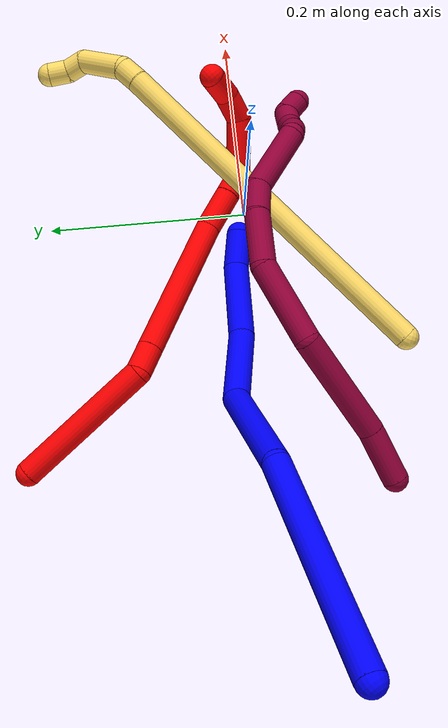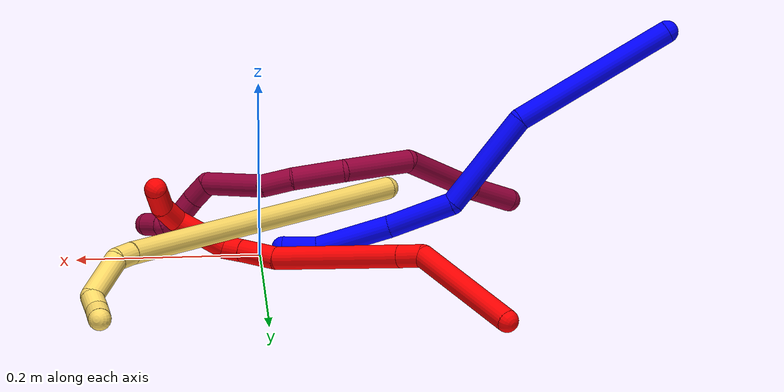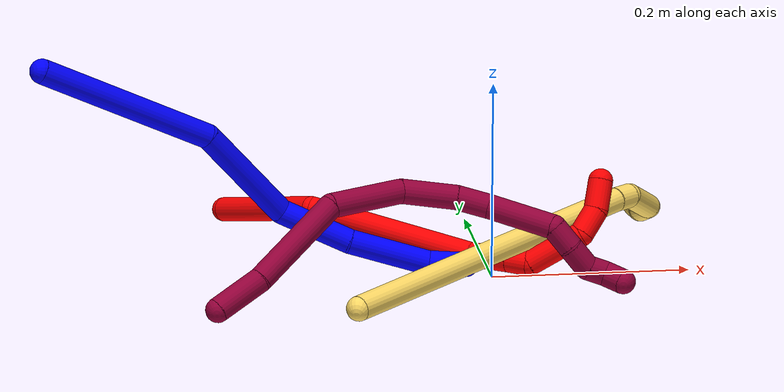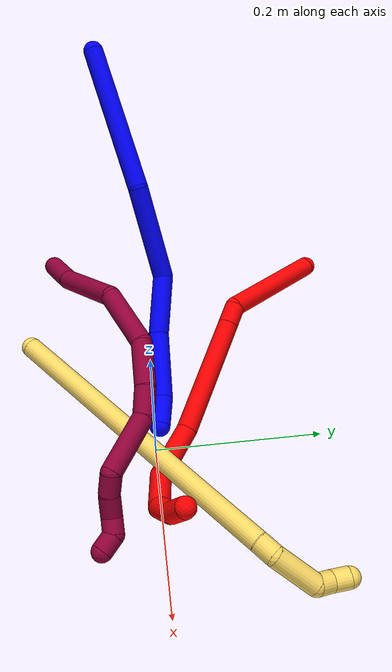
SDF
<sdf version="1.7">
 <world name="default">
  <model name="1">
   <static>0</static>
   <link name="1">
    <collision name="collision-cylinder-e_1_1_4">
     <pose>0.021118 -0.01757 -0.089955 2.9487 0.226455 1.73168</pose>
     <geometry><cylinder><radius>0.0125</radius><length>0.188113</length></cylinder></geometry>
     <surface>
      <friction><ode><mu>1.16</mu><mu2>1.16</mu2><slip1>0</slip1><slip2>0</slip2></ode></friction>
      <contact><ode><kp>1e+06</kp><kd>1</kd><max_vel>0</max_vel><min_depth>0.001</min_depth></ode></contact>
     </surface>
    </collision>
    <visual name="visual-cylinder-e_1_1_4">
     <pose>0.021118 -0.01757 -0.089955 2.9487 0.226455 1.73168</pose>
     <geometry><cylinder><radius>0.0125</radius><length>0.188113</length></cylinder></geometry>
     <material><ambient>0 0 1 1</ambient></material>
    </visual>
    <collision name="collision-cylinder-e_2_4_5">
     <pose>0.052404 -0.066819 -0.227627 2.55552 0.175704 0.56806</pose>
     <geometry><cylinder><radius>0.0125</radius><length>0.116341</length></cylinder></geometry>
     <surface>
      <friction><ode><mu>1.16</mu><mu2>1.16</mu2><slip1>0</slip1><slip2>0</slip2></ode></friction>
      <contact><ode><kp>1e+06</kp><kd>1</kd><max_vel>0</max_vel><min_depth>0.001</min_depth></ode></contact>
     </surface>
    </collision>
    <visual name="visual-cylinder-e_2_4_5">
     <pose>0.052404 -0.066819 -0.227627 2.55552 0.175704 0.56806</pose>
     <geometry><cylinder><radius>0.0125</radius><length>0.116341</length></cylinder></geometry>
     <material><ambient>0 0 1 1</ambient></material>
    </visual>
    <collision name="collision-cylinder-e_3_5_6">
     <pose>0.084147 -0.104144 -0.30551 2.95655 0.612726 2.57093</pose>
     <geometry><cylinder><radius>0.0125</radius><length>0.075028</length></cylinder></geometry>
     <surface>
      <friction><ode><mu>1.16</mu><mu2>1.16</mu2><slip1>0</slip1><slip2>0</slip2></ode></friction>
      <contact><ode><kp>1e+06</kp><kd>1</kd><max_vel>0</max_vel><min_depth>0.001</min_depth></ode></contact>
     </surface>
    </collision>
    <visual name="visual-cylinder-e_3_5_6">
     <pose>0.084147 -0.104144 -0.30551 2.95655 0.612726 2.57093</pose>
     <geometry><cylinder><radius>0.0125</radius><length>0.075028</length></cylinder></geometry>
     <material><ambient>0 0 1 1</ambient></material>
    </visual>
    <collision name="collision-cylinder-e_4_6_7">
     <pose>0.12523 -0.111084 -0.372111 3.1061 0.49133 3.00025</pose>
     <geometry><cylinder><radius>0.0125</radius><length>0.082699</length></cylinder></geometry>
     <surface>
      <friction><ode><mu>1.16</mu><mu2>1.16</mu2><slip1>0</slip1><slip2>0</slip2></ode></friction>
      <contact><ode><kp>1e+06</kp><kd>1</kd><max_vel>0</max_vel><min_depth>0.001</min_depth></ode></contact>
     </surface>
    </collision>
    <visual name="visual-cylinder-e_4_6_7">
     <pose>0.12523 -0.111084 -0.372111 3.1061 0.49133 3.00025</pose>
     <geometry><cylinder><radius>0.0125</radius><length>0.082699</length></cylinder></geometry>
     <material><ambient>0 0 1 1</ambient></material>
    </visual>
    <collision name="collision-cylinder-e_5_7_2">
     <pose>0.155771 -0.108053 -0.423282 -2.8561 0.622979 -2.30191</pose>
     <geometry><cylinder><radius>0.0125</radius><length>0.037819</length></cylinder></geometry>
     <surface>
      <friction><ode><mu>1.16</mu><mu2>1.16</mu2><slip1>0</slip1><slip2>0</slip2></ode></friction>
      <contact><ode><kp>1e+06</kp><kd>1</kd><max_vel>0</max_vel><min_depth>0.001</min_depth></ode></contact>
     </surface>
    </collision>
    <visual name="visual-cylinder-e_5_7_2">
     <pose>0.155771 -0.108053 -0.423282 -2.8561 0.622979 -2.30191</pose>
     <geometry><cylinder><radius>0.0125</radius><length>0.037819</length></cylinder></geometry>
     <material><ambient>0 0 1 1</ambient></material>
    </visual>
    <collision name="collision-sphere-2">
     <pose>0.166804 -0.103728 -0.438017 0 -0 0</pose>
     <geometry><sphere><radius>0.0125</radius></sphere></geometry>
     <surface>
      <friction><ode><mu>1.16</mu><mu2>1.16</mu2><slip1>0</slip1><slip2>0</slip2></ode></friction>
      <contact><ode><kp>1e+06</kp><kd>1</kd><max_vel>0</max_vel><min_depth>0.001</min_depth></ode></contact>
     </surface>
    </collision>
    <visual name="visual-sphere-2">
     <pose>0.166804 -0.103728 -0.438017 0 -0 0</pose>
     <geometry><sphere><radius>0.0125</radius></sphere></geometry>
     <material><ambient>0 0 1 1</ambient></material>
    </visual>
    <collision name="collision-sphere-7">
     <pose>0.144739 -0.112378 -0.408546 0 -0 0</pose>
     <geometry><sphere><radius>0.0125</radius></sphere></geometry>
     <surface>
      <friction><ode><mu>1.16</mu><mu2>1.16</mu2><slip1>0</slip1><slip2>0</slip2></ode></friction>
      <contact><ode><kp>1e+06</kp><kd>1</kd><max_vel>0</max_vel><min_depth>0.001</min_depth></ode></contact>
     </surface>
    </collision>
    <visual name="visual-sphere-7">
     <pose>0.144739 -0.112378 -0.408546 0 -0 0</pose>
     <geometry><sphere><radius>0.0125</radius></sphere></geometry>
     <material><ambient>0 0 1 1</ambient></material>
    </visual>
    <collision name="collision-sphere-6">
     <pose>0.105721 -0.10979 -0.335676 0 -0 0</pose>
     <geometry><sphere><radius>0.0125</radius></sphere></geometry>
     <surface>
      <friction><ode><mu>1.16</mu><mu2>1.16</mu2><slip1>0</slip1><slip2>0</slip2></ode></friction>
      <contact><ode><kp>1e+06</kp><kd>1</kd><max_vel>0</max_vel><min_depth>0.001</min_depth></ode></contact>
     </surface>
    </collision>
    <visual name="visual-sphere-6">
     <pose>0.105721 -0.10979 -0.335676 0 -0 0</pose>
     <geometry><sphere><radius>0.0125</radius></sphere></geometry>
     <material><ambient>0 0 1 1</ambient></material>
    </visual>
    <collision name="collision-sphere-5">
     <pose>0.062573 -0.098497 -0.275344 0 -0 0</pose>
     <geometry><sphere><radius>0.0125</radius></sphere></geometry>
     <surface>
      <friction><ode><mu>1.16</mu><mu2>1.16</mu2><slip1>0</slip1><slip2>0</slip2></ode></friction>
      <contact><ode><kp>1e+06</kp><kd>1</kd><max_vel>0</max_vel><min_depth>0.001</min_depth></ode></contact>
     </surface>
    </collision>
    <visual name="visual-sphere-5">
     <pose>0.062573 -0.098497 -0.275344 0 -0 0</pose>
     <geometry><sphere><radius>0.0125</radius></sphere></geometry>
     <material><ambient>0 0 1 1</ambient></material>
    </visual>
    <collision name="collision-sphere-1">
     <geometry><sphere><radius>0.0125</radius></sphere></geometry>
     <surface>
      <friction><ode><mu>1.16</mu><mu2>1.16</mu2><slip1>0</slip1><slip2>0</slip2></ode></friction>
      <contact><ode><kp>1e+06</kp><kd>1</kd><max_vel>0</max_vel><min_depth>0.001</min_depth></ode></contact>
     </surface>
    </collision>
    <visual name="visual-sphere-1">
     <geometry><sphere><radius>0.0125</radius></sphere></geometry>
     <material><ambient>0 0 1 1</ambient></material>
    </visual>
    <collision name="collision-sphere-4">
     <pose>0.042236 -0.03514 -0.17991 0 -0 0</pose>
     <geometry><sphere><radius>0.0125</radius></sphere></geometry>
     <surface>
      <friction><ode><mu>1.16</mu><mu2>1.16</mu2><slip1>0</slip1><slip2>0</slip2></ode></friction>
      <contact><ode><kp>1e+06</kp><kd>1</kd><max_vel>0</max_vel><min_depth>0.001</min_depth></ode></contact>
     </surface>
    </collision>
    <visual name="visual-sphere-4">
     <pose>0.042236 -0.03514 -0.17991 0 -0 0</pose>
     <geometry><sphere><radius>0.0125</radius></sphere></geometry>
     <material><ambient>0 0 1 1</ambient></material>
    </visual>
    <inertial>
     <pose>0.06526 -0.064331 -0.226214 0 -0 0</pose>
     <mass>0.5</mass>
     <inertia>
      <ixx>0.000597</ixx>
      <ixy>0</ixy>
      <ixz>0</ixz>
      <iyy>0.000736</iyy>
      <iyz>0</iyz>
      <izz>-4.8e-05</izz>
     </inertia>
    </inertial>
   </link>
   <pose>-0.447225 -0.032666 0.236665 1.31919 0.100345 -1.12625</pose>
  </model>
  <model name="2">
   <static>0</static>
   <link name="2">
    <collision name="collision-cylinder-e_1_1_4">
     <pose>-0.002177 -0.004907 -0.069579 3.07118 -0.031194 -0.833824</pose>
     <geometry><cylinder><radius>0.0125</radius><length>0.139572</length></cylinder></geometry>
     <surface>
      <friction><ode><mu>1.16</mu><mu2>1.16</mu2><slip1>0</slip1><slip2>0</slip2></ode></friction>
      <contact><ode><kp>1e+06</kp><kd>1</kd><max_vel>0</max_vel><min_depth>0.001</min_depth></ode></contact>
     </surface>
    </collision>
    <visual name="visual-cylinder-e_1_1_4">
     <pose>-0.002177 -0.004907 -0.069579 3.07118 -0.031194 -0.833824</pose>
     <geometry><cylinder><radius>0.0125</radius><length>0.139572</length></cylinder></geometry>
     <material><ambient>1 0 0 1</ambient></material>
    </visual>
    <collision name="collision-cylinder-e_2_4_5">
     <pose>0.003172 -0.010967 -0.150519 3.04055 0.582721 2.80753</pose>
     <geometry><cylinder><radius>0.0125</radius><length>0.02735</length></cylinder></geometry>
     <surface>
      <friction><ode><mu>1.16</mu><mu2>1.16</mu2><slip1>0</slip1><slip2>0</slip2></ode></friction>
      <contact><ode><kp>1e+06</kp><kd>1</kd><max_vel>0</max_vel><min_depth>0.001</min_depth></ode></contact>
     </surface>
    </collision>
    <visual name="visual-cylinder-e_2_4_5">
     <pose>0.003172 -0.010967 -0.150519 3.04055 0.582721 2.80753</pose>
     <geometry><cylinder><radius>0.0125</radius><length>0.02735</length></cylinder></geometry>
     <material><ambient>1 0 0 1</ambient></material>
    </visual>
    <collision name="collision-cylinder-e_3_5_6">
     <pose>0.051324 -0.018007 -0.223231 3.0459 0.582776 2.82495</pose>
     <geometry><cylinder><radius>0.0125</radius><length>0.147638</length></cylinder></geometry>
     <surface>
      <friction><ode><mu>1.16</mu><mu2>1.16</mu2><slip1>0</slip1><slip2>0</slip2></ode></friction>
      <contact><ode><kp>1e+06</kp><kd>1</kd><max_vel>0</max_vel><min_depth>0.001</min_depth></ode></contact>
     </surface>
    </collision>
    <visual name="visual-cylinder-e_3_5_6">
     <pose>0.051324 -0.018007 -0.223231 3.0459 0.582776 2.82495</pose>
     <geometry><cylinder><radius>0.0125</radius><length>0.147638</length></cylinder></geometry>
     <material><ambient>1 0 0 1</ambient></material>
    </visual>
    <collision name="collision-cylinder-e_4_6_7">
     <pose>0.099866 -0.02696 -0.304205 2.9867 0.379343 2.3733</pose>
     <geometry><cylinder><radius>0.0125</radius><length>0.042759</length></cylinder></geometry>
     <surface>
      <friction><ode><mu>1.16</mu><mu2>1.16</mu2><slip1>0</slip1><slip2>0</slip2></ode></friction>
      <contact><ode><kp>1e+06</kp><kd>1</kd><max_vel>0</max_vel><min_depth>0.001</min_depth></ode></contact>
     </surface>
    </collision>
    <visual name="visual-cylinder-e_4_6_7">
     <pose>0.099866 -0.02696 -0.304205 2.9867 0.379343 2.3733</pose>
     <geometry><cylinder><radius>0.0125</radius><length>0.042759</length></cylinder></geometry>
     <material><ambient>1 0 0 1</ambient></material>
    </visual>
    <collision name="collision-cylinder-e_5_7_8">
     <pose>0.112253 -0.03141 -0.334193 3.00867 0.403863 2.51289</pose>
     <geometry><cylinder><radius>0.0125</radius><length>0.022746</length></cylinder></geometry>
     <surface>
      <friction><ode><mu>1.16</mu><mu2>1.16</mu2><slip1>0</slip1><slip2>0</slip2></ode></friction>
      <contact><ode><kp>1e+06</kp><kd>1</kd><max_vel>0</max_vel><min_depth>0.001</min_depth></ode></contact>
     </surface>
    </collision>
    <visual name="visual-cylinder-e_5_7_8">
     <pose>0.112253 -0.03141 -0.334193 3.00867 0.403863 2.51289</pose>
     <geometry><cylinder><radius>0.0125</radius><length>0.022746</length></cylinder></geometry>
     <material><ambient>1 0 0 1</ambient></material>
    </visual>
    <collision name="collision-cylinder-e_6_8_9">
     <pose>0.123218 -0.055201 -0.363573 2.27452 0.217561 0.463379</pose>
     <geometry><cylinder><radius>0.0125</radius><length>0.06019</length></cylinder></geometry>
     <surface>
      <friction><ode><mu>1.16</mu><mu2>1.16</mu2><slip1>0</slip1><slip2>0</slip2></ode></friction>
      <contact><ode><kp>1e+06</kp><kd>1</kd><max_vel>0</max_vel><min_depth>0.001</min_depth></ode></contact>
     </surface>
    </collision>
    <visual name="visual-cylinder-e_6_8_9">
     <pose>0.123218 -0.055201 -0.363573 2.27452 0.217561 0.463379</pose>
     <geometry><cylinder><radius>0.0125</radius><length>0.06019</length></cylinder></geometry>
     <material><ambient>1 0 0 1</ambient></material>
    </visual>
    <collision name="collision-cylinder-e_7_9_10">
     <pose>0.130349 -0.091951 -0.384016 1.67002 0.044037 0.048636</pose>
     <geometry><cylinder><radius>0.0125</radius><length>0.02886</length></cylinder></geometry>
     <surface>
      <friction><ode><mu>1.16</mu><mu2>1.16</mu2><slip1>0</slip1><slip2>0</slip2></ode></friction>
      <contact><ode><kp>1e+06</kp><kd>1</kd><max_vel>0</max_vel><min_depth>0.001</min_depth></ode></contact>
     </surface>
    </collision>
    <visual name="visual-cylinder-e_7_9_10">
     <pose>0.130349 -0.091951 -0.384016 1.67002 0.044037 0.048636</pose>
     <geometry><cylinder><radius>0.0125</radius><length>0.02886</length></cylinder></geometry>
     <material><ambient>1 0 0 1</ambient></material>
    </visual>
    <collision name="collision-cylinder-e_8_10_2">
     <pose>0.127123 -0.121131 -0.38358 1.44581 -0.252788 -0.223277</pose>
     <geometry><cylinder><radius>0.0125</radius><length>0.030884</length></cylinder></geometry>
     <surface>
      <friction><ode><mu>1.16</mu><mu2>1.16</mu2><slip1>0</slip1><slip2>0</slip2></ode></friction>
      <contact><ode><kp>1e+06</kp><kd>1</kd><max_vel>0</max_vel><min_depth>0.001</min_depth></ode></contact>
     </surface>
    </collision>
    <visual name="visual-cylinder-e_8_10_2">
     <pose>0.127123 -0.121131 -0.38358 1.44581 -0.252788 -0.223277</pose>
     <geometry><cylinder><radius>0.0125</radius><length>0.030884</length></cylinder></geometry>
     <material><ambient>1 0 0 1</ambient></material>
    </visual>
    <collision name="collision-sphere-2">
     <pose>0.123261 -0.135965 -0.381716 0 -0 0</pose>
     <geometry><sphere><radius>0.0125</radius></sphere></geometry>
     <surface>
      <friction><ode><mu>1.16</mu><mu2>1.16</mu2><slip1>0</slip1><slip2>0</slip2></ode></friction>
      <contact><ode><kp>1e+06</kp><kd>1</kd><max_vel>0</max_vel><min_depth>0.001</min_depth></ode></contact>
     </surface>
    </collision>
    <visual name="visual-sphere-2">
     <pose>0.123261 -0.135965 -0.381716 0 -0 0</pose>
     <geometry><sphere><radius>0.0125</radius></sphere></geometry>
     <material><ambient>1 0 0 1</ambient></material>
    </visual>
    <collision name="collision-sphere-10">
     <pose>0.130985 -0.106297 -0.385444 0 -0 0</pose>
     <geometry><sphere><radius>0.0125</radius></sphere></geometry>
     <surface>
      <friction><ode><mu>1.16</mu><mu2>1.16</mu2><slip1>0</slip1><slip2>0</slip2></ode></friction>
      <contact><ode><kp>1e+06</kp><kd>1</kd><max_vel>0</max_vel><min_depth>0.001</min_depth></ode></contact>
     </surface>
    </collision>
    <visual name="visual-sphere-10">
     <pose>0.130985 -0.106297 -0.385444 0 -0 0</pose>
     <geometry><sphere><radius>0.0125</radius></sphere></geometry>
     <material><ambient>1 0 0 1</ambient></material>
    </visual>
    <collision name="collision-sphere-9">
     <pose>0.129714 -0.077606 -0.382588 0 -0 0</pose>
     <geometry><sphere><radius>0.0125</radius></sphere></geometry>
     <surface>
      <friction><ode><mu>1.16</mu><mu2>1.16</mu2><slip1>0</slip1><slip2>0</slip2></ode></friction>
      <contact><ode><kp>1e+06</kp><kd>1</kd><max_vel>0</max_vel><min_depth>0.001</min_depth></ode></contact>
     </surface>
    </collision>
    <visual name="visual-sphere-9">
     <pose>0.129714 -0.077606 -0.382588 0 -0 0</pose>
     <geometry><sphere><radius>0.0125</radius></sphere></geometry>
     <material><ambient>1 0 0 1</ambient></material>
    </visual>
    <collision name="collision-sphere-4">
     <pose>-0.004353 -0.009815 -0.139159 0 -0 0</pose>
     <geometry><sphere><radius>0.0125</radius></sphere></geometry>
     <surface>
      <friction><ode><mu>1.16</mu><mu2>1.16</mu2><slip1>0</slip1><slip2>0</slip2></ode></friction>
      <contact><ode><kp>1e+06</kp><kd>1</kd><max_vel>0</max_vel><min_depth>0.001</min_depth></ode></contact>
     </surface>
    </collision>
    <visual name="visual-sphere-4">
     <pose>-0.004353 -0.009815 -0.139159 0 -0 0</pose>
     <geometry><sphere><radius>0.0125</radius></sphere></geometry>
     <material><ambient>1 0 0 1</ambient></material>
    </visual>
    <collision name="collision-sphere-1">
     <geometry><sphere><radius>0.0125</radius></sphere></geometry>
     <surface>
      <friction><ode><mu>1.16</mu><mu2>1.16</mu2><slip1>0</slip1><slip2>0</slip2></ode></friction>
      <contact><ode><kp>1e+06</kp><kd>1</kd><max_vel>0</max_vel><min_depth>0.001</min_depth></ode></contact>
     </surface>
    </collision>
    <visual name="visual-sphere-1">
     <geometry><sphere><radius>0.0125</radius></sphere></geometry>
     <material><ambient>1 0 0 1</ambient></material>
    </visual>
    <collision name="collision-sphere-8">
     <pose>0.116722 -0.032796 -0.344559 0 -0 0</pose>
     <geometry><sphere><radius>0.0125</radius></sphere></geometry>
     <surface>
      <friction><ode><mu>1.16</mu><mu2>1.16</mu2><slip1>0</slip1><slip2>0</slip2></ode></friction>
      <contact><ode><kp>1e+06</kp><kd>1</kd><max_vel>0</max_vel><min_depth>0.001</min_depth></ode></contact>
     </surface>
    </collision>
    <visual name="visual-sphere-8">
     <pose>0.116722 -0.032796 -0.344559 0 -0 0</pose>
     <geometry><sphere><radius>0.0125</radius></sphere></geometry>
     <material><ambient>1 0 0 1</ambient></material>
    </visual>
    <collision name="collision-sphere-5">
     <pose>0.010698 -0.012118 -0.161879 0 -0 0</pose>
     <geometry><sphere><radius>0.0125</radius></sphere></geometry>
     <surface>
      <friction><ode><mu>1.16</mu><mu2>1.16</mu2><slip1>0</slip1><slip2>0</slip2></ode></friction>
      <contact><ode><kp>1e+06</kp><kd>1</kd><max_vel>0</max_vel><min_depth>0.001</min_depth></ode></contact>
     </surface>
    </collision>
    <visual name="visual-sphere-5">
     <pose>0.010698 -0.012118 -0.161879 0 -0 0</pose>
     <geometry><sphere><radius>0.0125</radius></sphere></geometry>
     <material><ambient>1 0 0 1</ambient></material>
    </visual>
    <collision name="collision-sphere-6">
     <pose>0.091949 -0.023897 -0.284584 0 -0 0</pose>
     <geometry><sphere><radius>0.0125</radius></sphere></geometry>
     <surface>
      <friction><ode><mu>1.16</mu><mu2>1.16</mu2><slip1>0</slip1><slip2>0</slip2></ode></friction>
      <contact><ode><kp>1e+06</kp><kd>1</kd><max_vel>0</max_vel><min_depth>0.001</min_depth></ode></contact>
     </surface>
    </collision>
    <visual name="visual-sphere-6">
     <pose>0.091949 -0.023897 -0.284584 0 -0 0</pose>
     <geometry><sphere><radius>0.0125</radius></sphere></geometry>
     <material><ambient>1 0 0 1</ambient></material>
    </visual>
    <collision name="collision-sphere-7">
     <pose>0.107783 -0.030024 -0.323827 0 -0 0</pose>
     <geometry><sphere><radius>0.0125</radius></sphere></geometry>
     <surface>
      <friction><ode><mu>1.16</mu><mu2>1.16</mu2><slip1>0</slip1><slip2>0</slip2></ode></friction>
      <contact><ode><kp>1e+06</kp><kd>1</kd><max_vel>0</max_vel><min_depth>0.001</min_depth></ode></contact>
     </surface>
    </collision>
    <visual name="visual-sphere-7">
     <pose>0.107783 -0.030024 -0.323827 0 -0 0</pose>
     <geometry><sphere><radius>0.0125</radius></sphere></geometry>
     <material><ambient>1 0 0 1</ambient></material>
    </visual>
    <inertial>
     <pose>0.058576 -0.030456 -0.224415 0 -0 0</pose>
     <mass>0.5</mass>
     <inertia>
      <ixx>-0.000122</ixx>
      <ixy>0</ixy>
      <ixz>0</ixz>
      <iyy>1.3e-05</iyy>
      <iyz>0</iyz>
      <izz>-0.000121</izz>
     </inertia>
    </inertial>
   </link>
   <pose>-0.248897 0.228508 0.011499 -1.77108 0.710709 0.469087</pose>
  </model>
  <model name="5">
   <static>0</static>
   <link name="5">
    <collision name="collision-cylinder-e_1_1_4">
     <pose>0.073164 0.084678 0.153525 -0.504041 0.395327 -0.10305</pose>
     <geometry><cylinder><radius>0.0125</radius><length>0.379965</length></cylinder></geometry>
     <surface>
      <friction><ode><mu>1.16</mu><mu2>1.16</mu2><slip1>0</slip1><slip2>0</slip2></ode></friction>
      <contact><ode><kp>1e+06</kp><kd>1</kd><max_vel>0</max_vel><min_depth>0.001</min_depth></ode></contact>
     </surface>
    </collision>
    <visual name="visual-cylinder-e_1_1_4">
     <pose>0.073164 0.084678 0.153525 -0.504041 0.395327 -0.10305</pose>
     <geometry><cylinder><radius>0.0125</radius><length>0.379965</length></cylinder></geometry>
     <material><ambient>1 0.858824 0.4 1</ambient></material>
    </visual>
    <collision name="collision-cylinder-e_2_4_5">
     <pose>0.150005 0.175181 0.315881 -0.583015 0.334533 -0.101239</pose>
     <geometry><cylinder><radius>0.0125</radius><length>0.0224</length></cylinder></geometry>
     <surface>
      <friction><ode><mu>1.16</mu><mu2>1.16</mu2><slip1>0</slip1><slip2>0</slip2></ode></friction>
      <contact><ode><kp>1e+06</kp><kd>1</kd><max_vel>0</max_vel><min_depth>0.001</min_depth></ode></contact>
     </surface>
    </collision>
    <visual name="visual-cylinder-e_2_4_5">
     <pose>0.150005 0.175181 0.315881 -0.583015 0.334533 -0.101239</pose>
     <geometry><cylinder><radius>0.0125</radius><length>0.0224</length></cylinder></geometry>
     <material><ambient>1 0.858824 0.4 1</ambient></material>
    </visual>
    <collision name="collision-cylinder-e_3_5_6">
     <pose>0.150873 0.202131 0.342721 -0.864899 -0.10087 0.046592</pose>
     <geometry><cylinder><radius>0.0125</radius><length>0.055803</length></cylinder></geometry>
     <surface>
      <friction><ode><mu>1.16</mu><mu2>1.16</mu2><slip1>0</slip1><slip2>0</slip2></ode></friction>
      <contact><ode><kp>1e+06</kp><kd>1</kd><max_vel>0</max_vel><min_depth>0.001</min_depth></ode></contact>
     </surface>
    </collision>
    <visual name="visual-cylinder-e_3_5_6">
     <pose>0.150873 0.202131 0.342721 -0.864899 -0.10087 0.046592</pose>
     <geometry><cylinder><radius>0.0125</radius><length>0.055803</length></cylinder></geometry>
     <material><ambient>1 0.858824 0.4 1</ambient></material>
    </visual>
    <collision name="collision-cylinder-e_4_6_7">
     <pose>0.140416 0.227105 0.366608 -0.579575 -0.827679 0.260442</pose>
     <geometry><cylinder><radius>0.0125</radius><length>0.020771</length></cylinder></geometry>
     <surface>
      <friction><ode><mu>1.16</mu><mu2>1.16</mu2><slip1>0</slip1><slip2>0</slip2></ode></friction>
      <contact><ode><kp>1e+06</kp><kd>1</kd><max_vel>0</max_vel><min_depth>0.001</min_depth></ode></contact>
     </surface>
    </collision>
    <visual name="visual-cylinder-e_4_6_7">
     <pose>0.140416 0.227105 0.366608 -0.579575 -0.827679 0.260442</pose>
     <geometry><cylinder><radius>0.0125</radius><length>0.020771</length></cylinder></geometry>
     <material><ambient>1 0.858824 0.4 1</ambient></material>
    </visual>
    <collision name="collision-cylinder-e_5_7_2">
     <pose>0.127298 0.232538 0.381345 -0.17697 -0.546233 0.049692</pose>
     <geometry><cylinder><radius>0.0125</radius><length>0.021061</length></cylinder></geometry>
     <surface>
      <friction><ode><mu>1.16</mu><mu2>1.16</mu2><slip1>0</slip1><slip2>0</slip2></ode></friction>
      <contact><ode><kp>1e+06</kp><kd>1</kd><max_vel>0</max_vel><min_depth>0.001</min_depth></ode></contact>
     </surface>
    </collision>
    <visual name="visual-cylinder-e_5_7_2">
     <pose>0.127298 0.232538 0.381345 -0.17697 -0.546233 0.049692</pose>
     <geometry><cylinder><radius>0.0125</radius><length>0.021061</length></cylinder></geometry>
     <material><ambient>1 0.858824 0.4 1</ambient></material>
    </visual>
    <collision name="collision-sphere-2">
     <pose>0.121827 0.234122 0.390203 0 -0 0</pose>
     <geometry><sphere><radius>0.0125</radius></sphere></geometry>
     <surface>
      <friction><ode><mu>1.16</mu><mu2>1.16</mu2><slip1>0</slip1><slip2>0</slip2></ode></friction>
      <contact><ode><kp>1e+06</kp><kd>1</kd><max_vel>0</max_vel><min_depth>0.001</min_depth></ode></contact>
     </surface>
    </collision>
    <visual name="visual-sphere-2">
     <pose>0.121827 0.234122 0.390203 0 -0 0</pose>
     <geometry><sphere><radius>0.0125</radius></sphere></geometry>
     <material><ambient>1 0.858824 0.4 1</ambient></material>
    </visual>
    <collision name="collision-sphere-7">
     <pose>0.132768 0.230954 0.372487 0 -0 0</pose>
     <geometry><sphere><radius>0.0125</radius></sphere></geometry>
     <surface>
      <friction><ode><mu>1.16</mu><mu2>1.16</mu2><slip1>0</slip1><slip2>0</slip2></ode></friction>
      <contact><ode><kp>1e+06</kp><kd>1</kd><max_vel>0</max_vel><min_depth>0.001</min_depth></ode></contact>
     </surface>
    </collision>
    <visual name="visual-sphere-7">
     <pose>0.132768 0.230954 0.372487 0 -0 0</pose>
     <geometry><sphere><radius>0.0125</radius></sphere></geometry>
     <material><ambient>1 0.858824 0.4 1</ambient></material>
    </visual>
    <collision name="collision-sphere-6">
     <pose>0.148063 0.223257 0.360729 0 -0 0</pose>
     <geometry><sphere><radius>0.0125</radius></sphere></geometry>
     <surface>
      <friction><ode><mu>1.16</mu><mu2>1.16</mu2><slip1>0</slip1><slip2>0</slip2></ode></friction>
      <contact><ode><kp>1e+06</kp><kd>1</kd><max_vel>0</max_vel><min_depth>0.001</min_depth></ode></contact>
     </surface>
    </collision>
    <visual name="visual-sphere-6">
     <pose>0.148063 0.223257 0.360729 0 -0 0</pose>
     <geometry><sphere><radius>0.0125</radius></sphere></geometry>
     <material><ambient>1 0.858824 0.4 1</ambient></material>
    </visual>
    <collision name="collision-sphere-5">
     <pose>0.153683 0.181005 0.324712 0 -0 0</pose>
     <geometry><sphere><radius>0.0125</radius></sphere></geometry>
     <surface>
      <friction><ode><mu>1.16</mu><mu2>1.16</mu2><slip1>0</slip1><slip2>0</slip2></ode></friction>
      <contact><ode><kp>1e+06</kp><kd>1</kd><max_vel>0</max_vel><min_depth>0.001</min_depth></ode></contact>
     </surface>
    </collision>
    <visual name="visual-sphere-5">
     <pose>0.153683 0.181005 0.324712 0 -0 0</pose>
     <geometry><sphere><radius>0.0125</radius></sphere></geometry>
     <material><ambient>1 0.858824 0.4 1</ambient></material>
    </visual>
    <collision name="collision-sphere-1">
     <geometry><sphere><radius>0.0125</radius></sphere></geometry>
     <surface>
      <friction><ode><mu>1.16</mu><mu2>1.16</mu2><slip1>0</slip1><slip2>0</slip2></ode></friction>
      <contact><ode><kp>1e+06</kp><kd>1</kd><max_vel>0</max_vel><min_depth>0.001</min_depth></ode></contact>
     </surface>
    </collision>
    <visual name="visual-sphere-1">
     <geometry><sphere><radius>0.0125</radius></sphere></geometry>
     <material><ambient>1 0.858824 0.4 1</ambient></material>
    </visual>
    <collision name="collision-sphere-4">
     <pose>0.146328 0.169357 0.30705 0 -0 0</pose>
     <geometry><sphere><radius>0.0125</radius></sphere></geometry>
     <surface>
      <friction><ode><mu>1.16</mu><mu2>1.16</mu2><slip1>0</slip1><slip2>0</slip2></ode></friction>
      <contact><ode><kp>1e+06</kp><kd>1</kd><max_vel>0</max_vel><min_depth>0.001</min_depth></ode></contact>
     </surface>
    </collision>
    <visual name="visual-sphere-4">
     <pose>0.146328 0.169357 0.30705 0 -0 0</pose>
     <geometry><sphere><radius>0.0125</radius></sphere></geometry>
     <material><ambient>1 0.858824 0.4 1</ambient></material>
    </visual>
    <inertial>
     <pose>0.090353 0.113986 0.200362 0 -0 0</pose>
     <mass>0.5</mass>
     <inertia>
      <ixx>0.003806</ixx>
      <ixy>0</ixy>
      <ixz>0</ixz>
      <iyy>0.003682</iyy>
      <iyz>0</iyz>
      <izz>-0.003791</izz>
     </inertia>
    </inertial>
   </link>
   <pose>-0.150889 -0.143379 0.018875 -1.17103 -0.428724 -0.478522</pose>
  </model>
  <model name="8">
   <static>0</static>
   <link name="8">
    <collision name="collision-cylinder-e_1_1_4">
     <pose>0.022485 0.002843 -0.013972 -2.94089 1.00566 -2.77945</pose>
     <geometry><cylinder><radius>0.0125</radius><length>0.053249</length></cylinder></geometry>
     <surface>
      <friction><ode><mu>1.16</mu><mu2>1.16</mu2><slip1>0</slip1><slip2>0</slip2></ode></friction>
      <contact><ode><kp>1e+06</kp><kd>1</kd><max_vel>0</max_vel><min_depth>0.001</min_depth></ode></contact>
     </surface>
    </collision>
    <visual name="visual-cylinder-e_1_1_4">
     <pose>0.022485 0.002843 -0.013972 -2.94089 1.00566 -2.77945</pose>
     <geometry><cylinder><radius>0.0125</radius><length>0.053249</length></cylinder></geometry>
     <material><ambient>0.584314 0 0.227451 1</ambient></material>
    </visual>
    <collision name="collision-cylinder-e_2_4_5">
     <pose>0.085598 0.018442 -0.062011 -2.78329 0.840546 -2.3716</pose>
     <geometry><cylinder><radius>0.0125</radius><length>0.109067</length></cylinder></geometry>
     <surface>
      <friction><ode><mu>1.16</mu><mu2>1.16</mu2><slip1>0</slip1><slip2>0</slip2></ode></friction>
      <contact><ode><kp>1e+06</kp><kd>1</kd><max_vel>0</max_vel><min_depth>0.001</min_depth></ode></contact>
     </surface>
    </collision>
    <visual name="visual-cylinder-e_2_4_5">
     <pose>0.085598 0.018442 -0.062011 -2.78329 0.840546 -2.3716</pose>
     <geometry><cylinder><radius>0.0125</radius><length>0.109067</length></cylinder></geometry>
     <material><ambient>0.584314 0 0.227451 1</ambient></material>
    </visual>
    <collision name="collision-cylinder-e_3_5_6">
     <pose>0.15786 0.019497 -0.117534 2.64231 0.913007 2.18389</pose>
     <geometry><cylinder><radius>0.0125</radius><length>0.079951</length></cylinder></geometry>
     <surface>
      <friction><ode><mu>1.16</mu><mu2>1.16</mu2><slip1>0</slip1><slip2>0</slip2></ode></friction>
      <contact><ode><kp>1e+06</kp><kd>1</kd><max_vel>0</max_vel><min_depth>0.001</min_depth></ode></contact>
     </surface>
    </collision>
    <visual name="visual-cylinder-e_3_5_6">
     <pose>0.15786 0.019497 -0.117534 2.64231 0.913007 2.18389</pose>
     <geometry><cylinder><radius>0.0125</radius><length>0.079951</length></cylinder></geometry>
     <material><ambient>0.584314 0 0.227451 1</ambient></material>
    </visual>
    <collision name="collision-cylinder-e_4_6_7">
     <pose>0.213655 -0.006286 -0.142801 1.83509 1.02759 1.27076</pose>
     <geometry><cylinder><radius>0.0125</radius><length>0.056448</length></cylinder></geometry>
     <surface>
      <friction><ode><mu>1.16</mu><mu2>1.16</mu2><slip1>0</slip1><slip2>0</slip2></ode></friction>
      <contact><ode><kp>1e+06</kp><kd>1</kd><max_vel>0</max_vel><min_depth>0.001</min_depth></ode></contact>
     </surface>
    </collision>
    <visual name="visual-cylinder-e_4_6_7">
     <pose>0.213655 -0.006286 -0.142801 1.83509 1.02759 1.27076</pose>
     <geometry><cylinder><radius>0.0125</radius><length>0.056448</length></cylinder></geometry>
     <material><ambient>0.584314 0 0.227451 1</ambient></material>
    </visual>
    <collision name="collision-cylinder-e_5_7_8">
     <pose>0.251507 -0.030709 -0.146493 1.55925 0.923886 0.914707</pose>
     <geometry><cylinder><radius>0.0125</radius><length>0.034315</length></cylinder></geometry>
     <surface>
      <friction><ode><mu>1.16</mu><mu2>1.16</mu2><slip1>0</slip1><slip2>0</slip2></ode></friction>
      <contact><ode><kp>1e+06</kp><kd>1</kd><max_vel>0</max_vel><min_depth>0.001</min_depth></ode></contact>
     </surface>
    </collision>
    <visual name="visual-cylinder-e_5_7_8">
     <pose>0.251507 -0.030709 -0.146493 1.55925 0.923886 0.914707</pose>
     <geometry><cylinder><radius>0.0125</radius><length>0.034315</length></cylinder></geometry>
     <material><ambient>0.584314 0 0.227451 1</ambient></material>
    </visual>
    <collision name="collision-cylinder-e_6_8_9">
     <pose>0.293222 -0.057384 -0.130747 0.807566 0.892004 0.403028</pose>
     <geometry><cylinder><radius>0.0125</radius><length>0.07201</length></cylinder></geometry>
     <surface>
      <friction><ode><mu>1.16</mu><mu2>1.16</mu2><slip1>0</slip1><slip2>0</slip2></ode></friction>
      <contact><ode><kp>1e+06</kp><kd>1</kd><max_vel>0</max_vel><min_depth>0.001</min_depth></ode></contact>
     </surface>
    </collision>
    <visual name="visual-cylinder-e_6_8_9">
     <pose>0.293222 -0.057384 -0.130747 0.807566 0.892004 0.403028</pose>
     <geometry><cylinder><radius>0.0125</radius><length>0.07201</length></cylinder></geometry>
     <material><ambient>0.584314 0 0.227451 1</ambient></material>
    </visual>
    <collision name="collision-cylinder-e_7_9_10">
     <pose>0.325327 -0.085937 -0.113602 1.44718 0.320132 0.283346</pose>
     <geometry><cylinder><radius>0.0125</radius><length>0.025942</length></cylinder></geometry>
     <surface>
      <friction><ode><mu>1.16</mu><mu2>1.16</mu2><slip1>0</slip1><slip2>0</slip2></ode></friction>
      <contact><ode><kp>1e+06</kp><kd>1</kd><max_vel>0</max_vel><min_depth>0.001</min_depth></ode></contact>
     </surface>
    </collision>
    <visual name="visual-cylinder-e_7_9_10">
     <pose>0.325327 -0.085937 -0.113602 1.44718 0.320132 0.283346</pose>
     <geometry><cylinder><radius>0.0125</radius><length>0.025942</length></cylinder></geometry>
     <material><ambient>0.584314 0 0.227451 1</ambient></material>
    </visual>
    <collision name="collision-cylinder-e_8_10_11">
     <pose>0.333168 -0.111305 -0.113043 1.64356 0.277737 0.298421</pose>
     <geometry><cylinder><radius>0.0125</radius><length>0.02742</length></cylinder></geometry>
     <surface>
      <friction><ode><mu>1.16</mu><mu2>1.16</mu2><slip1>0</slip1><slip2>0</slip2></ode></friction>
      <contact><ode><kp>1e+06</kp><kd>1</kd><max_vel>0</max_vel><min_depth>0.001</min_depth></ode></contact>
     </surface>
    </collision>
    <visual name="visual-cylinder-e_8_10_11">
     <pose>0.333168 -0.111305 -0.113043 1.64356 0.277737 0.298421</pose>
     <geometry><cylinder><radius>0.0125</radius><length>0.02742</length></cylinder></geometry>
     <material><ambient>0.584314 0 0.227451 1</ambient></material>
    </visual>
    <collision name="collision-cylinder-e_9_11_12">
     <pose>0.344158 -0.131377 -0.11559 1.79637 0.794395 0.969499</pose>
     <geometry><cylinder><radius>0.0125</radius><length>0.020269</length></cylinder></geometry>
     <surface>
      <friction><ode><mu>1.16</mu><mu2>1.16</mu2><slip1>0</slip1><slip2>0</slip2></ode></friction>
      <contact><ode><kp>1e+06</kp><kd>1</kd><max_vel>0</max_vel><min_depth>0.001</min_depth></ode></contact>
     </surface>
    </collision>
    <visual name="visual-cylinder-e_9_11_12">
     <pose>0.344158 -0.131377 -0.11559 1.79637 0.794395 0.969499</pose>
     <geometry><cylinder><radius>0.0125</radius><length>0.020269</length></cylinder></geometry>
     <material><ambient>0.584314 0 0.227451 1</ambient></material>
    </visual>
    <collision name="collision-cylinder-e_10_12_2">
     <pose>0.358818 -0.143318 -0.111404 0.715607 0.770789 0.301071</pose>
     <geometry><cylinder><radius>0.0125</radius><length>0.021329</length></cylinder></geometry>
     <surface>
      <friction><ode><mu>1.16</mu><mu2>1.16</mu2><slip1>0</slip1><slip2>0</slip2></ode></friction>
      <contact><ode><kp>1e+06</kp><kd>1</kd><max_vel>0</max_vel><min_depth>0.001</min_depth></ode></contact>
     </surface>
    </collision>
    <visual name="visual-cylinder-e_10_12_2">
     <pose>0.358818 -0.143318 -0.111404 0.715607 0.770789 0.301071</pose>
     <geometry><cylinder><radius>0.0125</radius><length>0.021329</length></cylinder></geometry>
     <material><ambient>0.584314 0 0.227451 1</ambient></material>
    </visual>
    <collision name="collision-sphere-2">
     <pose>0.366248 -0.148337 -0.105631 0 -0 0</pose>
     <geometry><sphere><radius>0.0125</radius></sphere></geometry>
     <surface>
      <friction><ode><mu>1.16</mu><mu2>1.16</mu2><slip1>0</slip1><slip2>0</slip2></ode></friction>
      <contact><ode><kp>1e+06</kp><kd>1</kd><max_vel>0</max_vel><min_depth>0.001</min_depth></ode></contact>
     </surface>
    </collision>
    <visual name="visual-sphere-2">
     <pose>0.366248 -0.148337 -0.105631 0 -0 0</pose>
     <geometry><sphere><radius>0.0125</radius></sphere></geometry>
     <material><ambient>0.584314 0 0.227451 1</ambient></material>
    </visual>
    <collision name="collision-sphere-12">
     <pose>0.351388 -0.138298 -0.117178 0 -0 0</pose>
     <geometry><sphere><radius>0.0125</radius></sphere></geometry>
     <surface>
      <friction><ode><mu>1.16</mu><mu2>1.16</mu2><slip1>0</slip1><slip2>0</slip2></ode></friction>
      <contact><ode><kp>1e+06</kp><kd>1</kd><max_vel>0</max_vel><min_depth>0.001</min_depth></ode></contact>
     </surface>
    </collision>
    <visual name="visual-sphere-12">
     <pose>0.351388 -0.138298 -0.117178 0 -0 0</pose>
     <geometry><sphere><radius>0.0125</radius></sphere></geometry>
     <material><ambient>0.584314 0 0.227451 1</ambient></material>
    </visual>
    <collision name="collision-sphere-11">
     <pose>0.336927 -0.124455 -0.114001 0 -0 0</pose>
     <geometry><sphere><radius>0.0125</radius></sphere></geometry>
     <surface>
      <friction><ode><mu>1.16</mu><mu2>1.16</mu2><slip1>0</slip1><slip2>0</slip2></ode></friction>
      <contact><ode><kp>1e+06</kp><kd>1</kd><max_vel>0</max_vel><min_depth>0.001</min_depth></ode></contact>
     </surface>
    </collision>
    <visual name="visual-sphere-11">
     <pose>0.336927 -0.124455 -0.114001 0 -0 0</pose>
     <geometry><sphere><radius>0.0125</radius></sphere></geometry>
     <material><ambient>0.584314 0 0.227451 1</ambient></material>
    </visual>
    <collision name="collision-sphere-10">
     <pose>0.329409 -0.098155 -0.112084 0 -0 0</pose>
     <geometry><sphere><radius>0.0125</radius></sphere></geometry>
     <surface>
      <friction><ode><mu>1.16</mu><mu2>1.16</mu2><slip1>0</slip1><slip2>0</slip2></ode></friction>
      <contact><ode><kp>1e+06</kp><kd>1</kd><max_vel>0</max_vel><min_depth>0.001</min_depth></ode></contact>
     </surface>
    </collision>
    <visual name="visual-sphere-10">
     <pose>0.329409 -0.098155 -0.112084 0 -0 0</pose>
     <geometry><sphere><radius>0.0125</radius></sphere></geometry>
     <material><ambient>0.584314 0 0.227451 1</ambient></material>
    </visual>
    <collision name="collision-sphere-9">
     <pose>0.321245 -0.073719 -0.115121 0 -0 0</pose>
     <geometry><sphere><radius>0.0125</radius></sphere></geometry>
     <surface>
      <friction><ode><mu>1.16</mu><mu2>1.16</mu2><slip1>0</slip1><slip2>0</slip2></ode></friction>
      <contact><ode><kp>1e+06</kp><kd>1</kd><max_vel>0</max_vel><min_depth>0.001</min_depth></ode></contact>
     </surface>
    </collision>
    <visual name="visual-sphere-9">
     <pose>0.321245 -0.073719 -0.115121 0 -0 0</pose>
     <geometry><sphere><radius>0.0125</radius></sphere></geometry>
     <material><ambient>0.584314 0 0.227451 1</ambient></material>
    </visual>
    <collision name="collision-sphere-4">
     <pose>0.04497 0.005685 -0.027944 0 -0 0</pose>
     <geometry><sphere><radius>0.0125</radius></sphere></geometry>
     <surface>
      <friction><ode><mu>1.16</mu><mu2>1.16</mu2><slip1>0</slip1><slip2>0</slip2></ode></friction>
      <contact><ode><kp>1e+06</kp><kd>1</kd><max_vel>0</max_vel><min_depth>0.001</min_depth></ode></contact>
     </surface>
    </collision>
    <visual name="visual-sphere-4">
     <pose>0.04497 0.005685 -0.027944 0 -0 0</pose>
     <geometry><sphere><radius>0.0125</radius></sphere></geometry>
     <material><ambient>0.584314 0 0.227451 1</ambient></material>
    </visual>
    <collision name="collision-sphere-1">
     <geometry><sphere><radius>0.0125</radius></sphere></geometry>
     <surface>
      <friction><ode><mu>1.16</mu><mu2>1.16</mu2><slip1>0</slip1><slip2>0</slip2></ode></friction>
      <contact><ode><kp>1e+06</kp><kd>1</kd><max_vel>0</max_vel><min_depth>0.001</min_depth></ode></contact>
     </surface>
    </collision>
    <visual name="visual-sphere-1">
     <geometry><sphere><radius>0.0125</radius></sphere></geometry>
     <material><ambient>0.584314 0 0.227451 1</ambient></material>
    </visual>
    <collision name="collision-sphere-8">
     <pose>0.265198 -0.041049 -0.146373 0 -0 0</pose>
     <geometry><sphere><radius>0.0125</radius></sphere></geometry>
     <surface>
      <friction><ode><mu>1.16</mu><mu2>1.16</mu2><slip1>0</slip1><slip2>0</slip2></ode></friction>
      <contact><ode><kp>1e+06</kp><kd>1</kd><max_vel>0</max_vel><min_depth>0.001</min_depth></ode></contact>
     </surface>
    </collision>
    <visual name="visual-sphere-8">
     <pose>0.265198 -0.041049 -0.146373 0 -0 0</pose>
     <geometry><sphere><radius>0.0125</radius></sphere></geometry>
     <material><ambient>0.584314 0 0.227451 1</ambient></material>
    </visual>
    <collision name="collision-sphere-5">
     <pose>0.126225 0.031199 -0.096078 0 -0 0</pose>
     <geometry><sphere><radius>0.0125</radius></sphere></geometry>
     <surface>
      <friction><ode><mu>1.16</mu><mu2>1.16</mu2><slip1>0</slip1><slip2>0</slip2></ode></friction>
      <contact><ode><kp>1e+06</kp><kd>1</kd><max_vel>0</max_vel><min_depth>0.001</min_depth></ode></contact>
     </surface>
    </collision>
    <visual name="visual-sphere-5">
     <pose>0.126225 0.031199 -0.096078 0 -0 0</pose>
     <geometry><sphere><radius>0.0125</radius></sphere></geometry>
     <material><ambient>0.584314 0 0.227451 1</ambient></material>
    </visual>
    <collision name="collision-sphere-6">
     <pose>0.189494 0.007796 -0.13899 0 -0 0</pose>
     <geometry><sphere><radius>0.0125</radius></sphere></geometry>
     <surface>
      <friction><ode><mu>1.16</mu><mu2>1.16</mu2><slip1>0</slip1><slip2>0</slip2></ode></friction>
      <contact><ode><kp>1e+06</kp><kd>1</kd><max_vel>0</max_vel><min_depth>0.001</min_depth></ode></contact>
     </surface>
    </collision>
    <visual name="visual-sphere-6">
     <pose>0.189494 0.007796 -0.13899 0 -0 0</pose>
     <geometry><sphere><radius>0.0125</radius></sphere></geometry>
     <material><ambient>0.584314 0 0.227451 1</ambient></material>
    </visual>
    <collision name="collision-sphere-7">
     <pose>0.237816 -0.020368 -0.146612 0 -0 0</pose>
     <geometry><sphere><radius>0.0125</radius></sphere></geometry>
     <surface>
      <friction><ode><mu>1.16</mu><mu2>1.16</mu2><slip1>0</slip1><slip2>0</slip2></ode></friction>
      <contact><ode><kp>1e+06</kp><kd>1</kd><max_vel>0</max_vel><min_depth>0.001</min_depth></ode></contact>
     </surface>
    </collision>
    <visual name="visual-sphere-7">
     <pose>0.237816 -0.020368 -0.146612 0 -0 0</pose>
     <geometry><sphere><radius>0.0125</radius></sphere></geometry>
     <material><ambient>0.584314 0 0.227451 1</ambient></material>
    </visual>
    <inertial>
     <pose>0.194328 -0.025641 -0.100346 0 -0 0</pose>
     <mass>0.5</mass>
     <inertia>
      <ixx>-2.9e-05</ixx>
      <ixy>0</ixy>
      <ixz>0</ixz>
      <iyy>0.000173</iyy>
      <iyz>0</iyz>
      <izz>-0.00017</izz>
     </inertia>
    </inertial>
   </link>
   <pose>-0.285287 -0.113054 0.012789 1.61448 -0.37267 -0.170278</pose>
  </model>
 </world>
</sdf>
